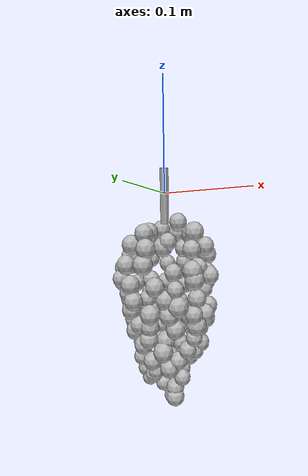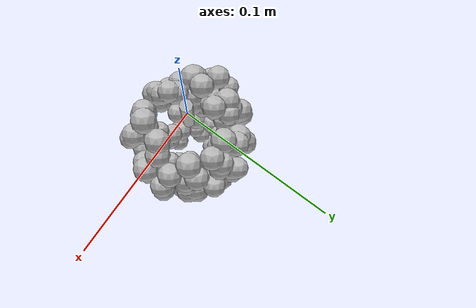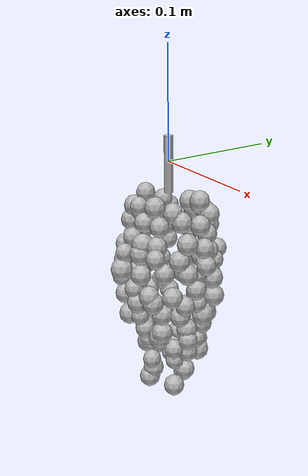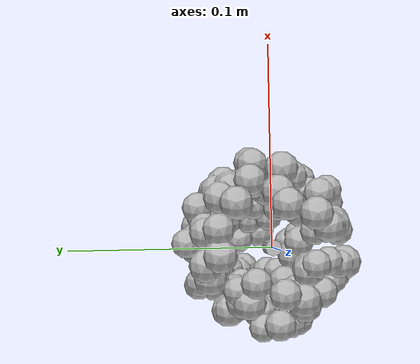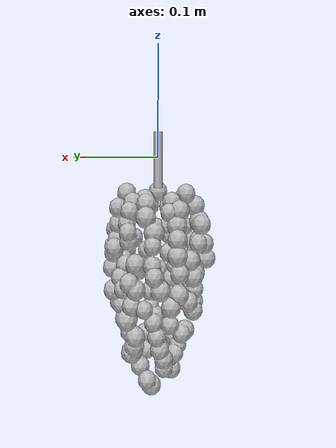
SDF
<?xml version='1.0' encoding='utf-8'?>
<sdf version="1.6">
  <model name="grape_bunch_crimson">
    <link name="bunch">
      <gravity>false</gravity>
      <inertial>
        <pose>0.000946812 -0.0008262 -0.121543 0 0 0</pose>
        <mass>0.15</mass>
        <inertia>
          <ixx>0.000621233</ixx>
          <iyy>0.000624504</iyy>
          <izz>0.000266899</izz>
          <ixy>0</ixy>
          <ixz>0</ixz>
          <iyz>0</iyz>
        </inertia>
      </inertial>
      <collision name="berries">
        <pose>0.000946812 -0.0008262 -0.121543 0 0 0</pose>
        <geometry>
          <box>
            <size>0.103956 0.10269 0.197873</size>
          </box>
        </geometry>
      </collision>
      <visual name="berries">
        <geometry>
          <mesh>
            <uri>model://grape_bunch_crimson/meshes/berries.obj</uri>
          </mesh>
        </geometry>
      </visual>
      <visual name="stem">
        <geometry>
          <mesh>
            <uri>model://grape_bunch_crimson/meshes/stem.obj</uri>
          </mesh>
        </geometry>
      </visual>
    </link>
  </model>
</sdf>
